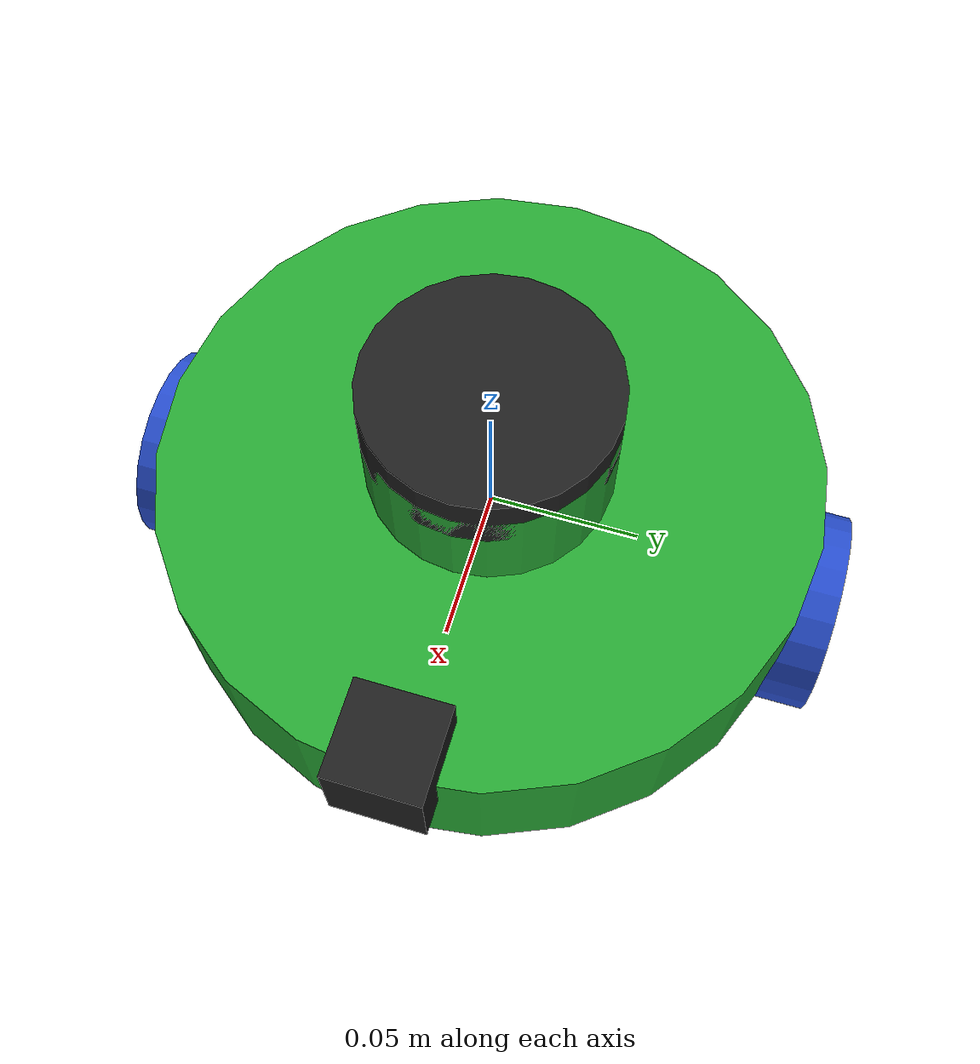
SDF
<sdf version='1.11'>
  <model name='jetbot'>
    <link name='base_link'>
      <inertial>
        <pose>0 0 0.0026562500000000002 0 0 0</pose>
        <mass>1.6000000000000001</mass>
        <inertia>
          <ixx>0.021169335937499999</ixx>
          <ixy>0</ixy>
          <ixz>0</ixz>
          <iyy>0.021169335937499999</iyy>
          <iyz>0</iyz>
          <izz>0.042000000000000003</izz>
        </inertia>
      </inertial>
      <collision name='base_link_collision_collision'>
        <pose>0 0 0 0 0 0</pose>
        <geometry>
          <cylinder>
            <length>0.050000000000000003</length>
            <radius>0.1066</radius>
          </cylinder>
        </geometry>
        <surface>
          <contact>
            <ode/>
          </contact>
          <friction>
            <ode>
              <mu>0.5</mu>
              <mu2>0.5</mu2>
            </ode>
          </friction>
        </surface>
      </collision>
      <collision name='base_link_fixed_joint_lump__lidar_base_collision_1'>
        <pose>0 0 0.042500000000000003 0 0 0</pose>
        <geometry>
          <cylinder>
            <length>0.035000000000000003</length>
            <radius>0.040000000000000001</radius>
          </cylinder>
        </geometry>
        <surface>
          <contact>
            <ode/>
          </contact>
          <friction>
            <ode/>
          </friction>
        </surface>
      </collision>
      <visual name='base_link_visual'>
        <pose>0 0 0 0 0 0</pose>
        <geometry>
          <cylinder>
            <length>0.050000000000000003</length>
            <radius>0.1066</radius>
          </cylinder>
        </geometry>
        <material>
          <script>
            <name>Gazebo/Green</name>
            <uri>file://media/materials/scripts/gazebo.material</uri>
          </script>
          <diffuse>0 1 0 1</diffuse>
          <ambient>0 1 0 1</ambient>
        </material>
      </visual>
      <visual name='base_link_fixed_joint_lump__camera_visual_1'>
        <pose>0.10000000000000001 0 0.025 0 0 0</pose>
        <geometry>
          <box>
            <size>0.029999999999999999 0.029999999999999999 0.029999999999999999</size>
          </box>
        </geometry>
        <material>
          <script>
            <name>Gazebo/Black</name>
            <uri>file://media/materials/scripts/gazebo.material</uri>
          </script>
          <diffuse>0 0 0 1</diffuse>
          <ambient>0 0 0 1</ambient>
        </material>
      </visual>
      <visual name='base_link_fixed_joint_lump__lidar_base_visual_2'>
        <pose>0 0 0.042500000000000003 0 0 0</pose>
        <geometry>
          <cylinder>
            <length>0.035000000000000003</length>
            <radius>0.040000000000000001</radius>
          </cylinder>
        </geometry>
        <material>
          <script>
            <name>Gazebo/Green</name>
            <uri>file://media/materials/scripts/gazebo.material</uri>
          </script>
          <diffuse>0 1 0 1</diffuse>
          <ambient>0 1 0 1</ambient>
        </material>
      </visual>
      <visual name='base_link_fixed_joint_lump__lidar_visual_3'>
        <pose>0 0 0.059999999999999998 0 0 0</pose>
        <geometry>
          <cylinder>
            <length>0.02</length>
            <radius>0.040000000000000001</radius>
          </cylinder>
        </geometry>
        <material>
          <script>
            <name>Gazebo/Black</name>
            <uri>file://media/materials/scripts/gazebo.material</uri>
          </script>
          <diffuse>0 0 0 1</diffuse>
          <ambient>0 0 0 1</ambient>
        </material>
      </visual>
      <sensor name='sim_camera' type='camera'>
        <update_rate>30</update_rate>
        <camera>
          <horizontal_fov>1.3962600000000001</horizontal_fov>
          <image>
            <width>640</width>
            <height>480</height>
            <format>R8G8B8</format>
          </image>
          <clip>
            <near>0.10000000000000001</near>
            <far>100</far>
          </clip>
        </camera>
        <plugin name='gz::sim::systems::Camera' filename='gz-sim-camera-system'>
          <topic>/image_raw</topic>
          <frame_id>camera</frame_id>
        </plugin>
        <pose>0.10000000000000001 0 0.025 0 0 0</pose>
      </sensor>
      <sensor name='lidar_sensor' type='gpu_lidar'>
        <update_rate>20</update_rate>
        <ray>
          <scan>
            <horizontal>
              <samples>720</samples>
              <resolution>1</resolution>
              <min_angle>-1.5700000000000001</min_angle>
              <max_angle>1.5700000000000001</max_angle>
            </horizontal>
          </scan>
          <range>
            <min>0.12</min>
            <max>10</max>
          </range>
        </ray>
        <plugin name='gz::sim::systems::GpuLidar' filename='gz-sim-gpu-lidar-system'>
          <topic>/scan</topic>
          <frame_id>lidar</frame_id>
        </plugin>
        <pose>0 0 0.059999999999999998 0 0 0</pose>
      </sensor>
    </link>
    <joint name='balance_joint' type='revolute'>
      <pose relative_to='base_link'>0.089999999999999997 0 -0.027 0 0 0</pose>
      <parent>base_link</parent>
      <child>balance_wheel</child>
      <axis>
        <xyz>0 1 0</xyz>
        <limit>
          <effort>0.10000000000000001</effort>
          <velocity>10</velocity>
          <lower>-inf</lower>
          <upper>inf</upper>
        </limit>
        <dynamics>
          <spring_reference>0</spring_reference>
          <spring_stiffness>0</spring_stiffness>
        </dynamics>
      </axis>
    </joint>
    <link name='balance_wheel'>
      <pose relative_to='balance_joint'>0 0 0 0 0 0</pose>
      <inertial>
        <pose>0 0 0 0 0 0</pose>
        <mass>0.050000000000000003</mass>
        <inertia>
          <ixx>0.00050000000000000001</ixx>
          <ixy>0</ixy>
          <ixz>0</ixz>
          <iyy>0.00050000000000000001</iyy>
          <iyz>0</iyz>
          <izz>0.00050000000000000001</izz>
        </inertia>
      </inertial>
      <collision name='balance_wheel_collision'>
        <pose>0 0 0 0 0 0</pose>
        <geometry>
          <sphere>
            <radius>0.014999999999999999</radius>
          </sphere>
        </geometry>
        <surface>
          <contact>
            <ode/>
          </contact>
          <friction>
            <ode>
              <mu>1</mu>
              <mu2>1</mu2>
            </ode>
          </friction>
        </surface>
      </collision>
      <visual name='balance_wheel_visual'>
        <pose>0 0 0 0 0 0</pose>
        <geometry>
          <sphere>
            <radius>0.014999999999999999</radius>
          </sphere>
        </geometry>
        <material>
          <script>
            <name>Gazebo/Black</name>
            <uri>file://media/materials/scripts/gazebo.material</uri>
          </script>
          <diffuse>0 0 0 1</diffuse>
          <ambient>0 0 0 1</ambient>
        </material>
      </visual>
    </link>
    <joint name='balance_joint_2' type='revolute'>
      <pose relative_to='base_link'>-0.089999999999999997 0 -0.027 0 0 0</pose>
      <parent>base_link</parent>
      <child>balance_wheel_2</child>
      <axis>
        <xyz>0 1 0</xyz>
        <limit>
          <effort>0.10000000000000001</effort>
          <velocity>10</velocity>
          <lower>-inf</lower>
          <upper>inf</upper>
        </limit>
        <dynamics>
          <spring_reference>0</spring_reference>
          <spring_stiffness>0</spring_stiffness>
        </dynamics>
      </axis>
    </joint>
    <link name='balance_wheel_2'>
      <pose relative_to='balance_joint_2'>0 0 0 0 0 0</pose>
      <inertial>
        <pose>0 0 0 0 0 0</pose>
        <mass>0.050000000000000003</mass>
        <inertia>
          <ixx>0.00050000000000000001</ixx>
          <ixy>0</ixy>
          <ixz>0</ixz>
          <iyy>0.00050000000000000001</iyy>
          <iyz>0</iyz>
          <izz>0.00050000000000000001</izz>
        </inertia>
      </inertial>
      <collision name='balance_wheel_2_collision'>
        <pose>0 0 0 0 0 0</pose>
        <geometry>
          <sphere>
            <radius>0.014999999999999999</radius>
          </sphere>
        </geometry>
        <surface>
          <contact>
            <ode/>
          </contact>
          <friction>
            <ode>
              <mu>1</mu>
              <mu2>1</mu2>
            </ode>
          </friction>
        </surface>
      </collision>
      <visual name='balance_wheel_2_visual'>
        <pose>0 0 0 0 0 0</pose>
        <geometry>
          <sphere>
            <radius>0.014999999999999999</radius>
          </sphere>
        </geometry>
        <material>
          <script>
            <name>Gazebo/Black</name>
            <uri>file://media/materials/scripts/gazebo.material</uri>
          </script>
          <diffuse>0 0 0 1</diffuse>
          <ambient>0 0 0 1</ambient>
        </material>
      </visual>
    </link>
    <joint name='left_wheel_joint' type='revolute'>
      <pose relative_to='base_link'>0 0.1066 -0.02 0 0 0</pose>
      <parent>base_link</parent>
      <child>left_wheel</child>
      <axis>
        <xyz>0 1 0</xyz>
        <limit>
          <lower>-inf</lower>
          <upper>inf</upper>
        </limit>
        <dynamics>
          <spring_reference>0</spring_reference>
          <spring_stiffness>0</spring_stiffness>
        </dynamics>
      </axis>
    </joint>
    <link name='left_wheel'>
      <pose relative_to='left_wheel_joint'>0 0 0 0 0 0</pose>
      <inertial>
        <pose>0 0 0 0 0 0</pose>
        <mass>0.10000000000000001</mass>
        <inertia>
          <ixx>0.001</ixx>
          <ixy>0</ixy>
          <ixz>0</ixz>
          <iyy>0.001</iyy>
          <iyz>0</iyz>
          <izz>0.002</izz>
        </inertia>
      </inertial>
      <collision name='left_wheel_collision_collision'>
        <pose>0 0 0 1.5707 0 0</pose>
        <geometry>
          <cylinder>
            <length>0.02</length>
            <radius>0.033000000000000002</radius>
          </cylinder>
        </geometry>
        <surface>
          <contact>
            <ode>
              <kp>1000000</kp>
              <kd>100</kd>
            </ode>
          </contact>
          <friction>
            <ode>
              <mu>1</mu>
              <mu2>1</mu2>
            </ode>
          </friction>
        </surface>
      </collision>
      <visual name='left_wheel_visual'>
        <pose>0 0 0 1.5707 0 0</pose>
        <geometry>
          <cylinder>
            <length>0.02</length>
            <radius>0.033000000000000002</radius>
          </cylinder>
        </geometry>
        <material>
          <script>
            <name>Gazebo/Blue</name>
            <uri>file://media/materials/scripts/gazebo.material</uri>
          </script>
          <diffuse>0 0 1 1</diffuse>
          <ambient>0 0 1 1</ambient>
        </material>
      </visual>
    </link>
    <joint name='right_wheel_joint' type='revolute'>
      <pose relative_to='base_link'>0 -0.1066 -0.02 0 0 0</pose>
      <parent>base_link</parent>
      <child>right_wheel</child>
      <axis>
        <xyz>0 1 0</xyz>
        <limit>
          <lower>-inf</lower>
          <upper>inf</upper>
        </limit>
        <dynamics>
          <spring_reference>0</spring_reference>
          <spring_stiffness>0</spring_stiffness>
        </dynamics>
      </axis>
    </joint>
    <link name='right_wheel'>
      <pose relative_to='right_wheel_joint'>0 0 0 0 0 0</pose>
      <inertial>
        <pose>0 0 0 0 0 0</pose>
        <mass>0.10000000000000001</mass>
        <inertia>
          <ixx>0.001</ixx>
          <ixy>0</ixy>
          <ixz>0</ixz>
          <iyy>0.001</iyy>
          <iyz>0</iyz>
          <izz>0.002</izz>
        </inertia>
      </inertial>
      <collision name='right_wheel_collision_collision'>
        <pose>0 0 0 1.5707 0 0</pose>
        <geometry>
          <cylinder>
            <length>0.02</length>
            <radius>0.033000000000000002</radius>
          </cylinder>
        </geometry>
        <surface>
          <contact>
            <ode>
              <kp>1000000</kp>
              <kd>100</kd>
            </ode>
          </contact>
          <friction>
            <ode>
              <mu>1</mu>
              <mu2>1</mu2>
            </ode>
          </friction>
        </surface>
      </collision>
      <visual name='right_wheel_visual'>
        <pose>0 0 0 1.5707 0 0</pose>
        <geometry>
          <cylinder>
            <length>0.02</length>
            <radius>0.033000000000000002</radius>
          </cylinder>
        </geometry>
        <material>
          <script>
            <name>Gazebo/Blue</name>
            <uri>file://media/materials/scripts/gazebo.material</uri>
          </script>
          <diffuse>0 0 1 1</diffuse>
          <ambient>0 0 1 1</ambient>
        </material>
      </visual>
    </link>
    <plugin name='gz::sim::systems::DiffDrive' filename='gz-sim-diff-drive-system'>
      <left_joint>left_wheel_joint</left_joint>
      <right_joint>right_wheel_joint</right_joint>
      <wheel_separation>0.21325</wheel_separation>
      <wheel_radius>0.033</wheel_radius>
      <odom_topic>/jetbot/odom</odom_topic>
      <cmd_topic>/jetbot/cmd_vel</cmd_topic>
    </plugin>
    <plugin name='gz::sim::systems::JointStatePublisher' filename='gz-sim-joint-state-publisher-system'>
      <topic>joint_states</topic>
      <joint_name>left_wheel_joint</joint_name>
      <joint_name>right_wheel_joint</joint_name>
    </plugin>
    <frame name='camera_joint' attached_to='base_link'>
      <pose>0.10000000000000001 0 0.025 0 0 0</pose>
    </frame>
    <frame name='camera' attached_to='camera_joint'>
      <pose>0 0 0 0 0 0</pose>
    </frame>
    <frame name='lidar_joint' attached_to='lidar_base'>
      <pose>0 0 0.035000000000000003 0 0 0</pose>
    </frame>
    <frame name='lidar' attached_to='lidar_joint'>
      <pose>0 0 0 0 0 0</pose>
    </frame>
    <frame name='lidar_base_joint' attached_to='base_link'>
      <pose>0 0 0.025000000000000001 0 0 0</pose>
    </frame>
    <frame name='lidar_base' attached_to='lidar_base_joint'>
      <pose>0 0 0 0 0 0</pose>
    </frame>
  </model>
</sdf>
